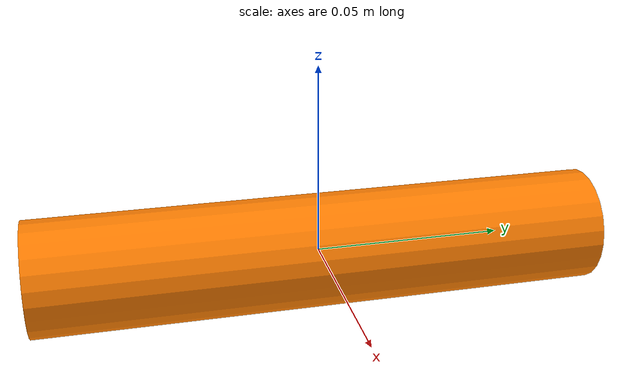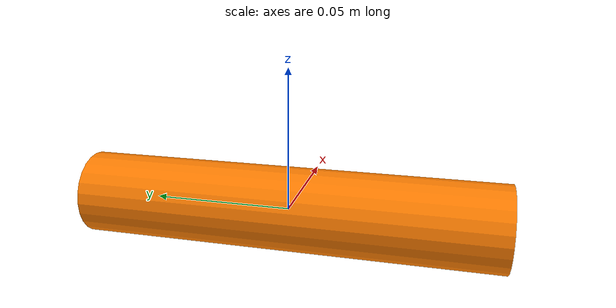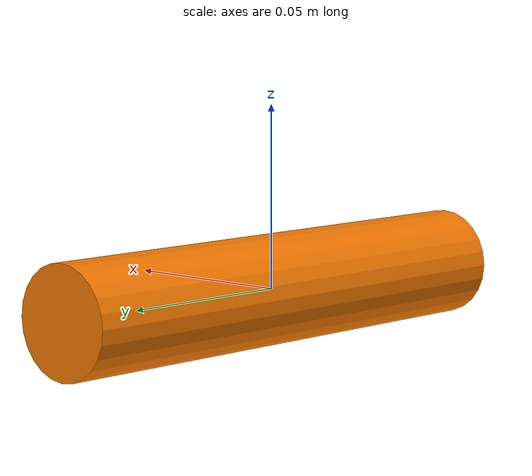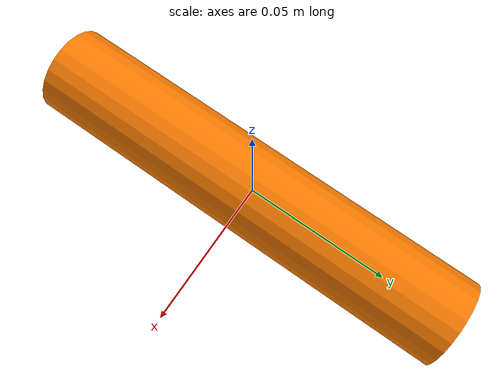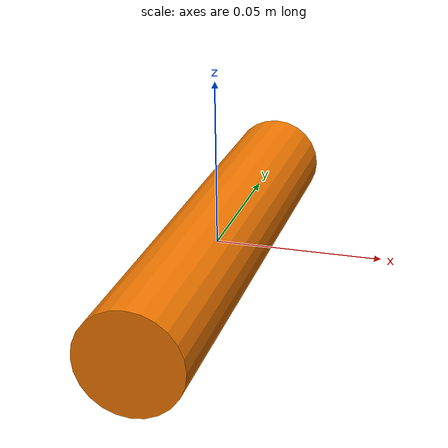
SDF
<?xml version='1.0'?>
<sdf version='1.6'>
  <model name='marker'>
    <link name='link_0'>
      <inertial>
        <mass>1</mass>
        <inertia>
          <ixx>0.145833</ixx>
          <ixy>0</ixy>
          <ixz>0</ixz>
          <iyy>0.145833</iyy>
          <iyz>0</iyz>
          <izz>0.125</izz>
        </inertia>
        <pose frame=''>0 0 0 0 -0 0</pose>
      </inertial>
      <pose frame=''>0 -0 0 0 -0 0</pose>
      <gravity>0</gravity>
      <self_collide>0</self_collide>
      <kinematic>0</kinematic>
      <enable_wind>0</enable_wind>
      <visual name='visual'>
        <pose frame=''>0 0 0 1.57 0 0</pose>
        <geometry>
          <cylinder>
            <radius>0.015</radius>
            <length>0.15</length>
          </cylinder>
        </geometry>
        <material>
          <lighting>1</lighting>
          <script>
            <uri>file://media/materials/scripts/gazebo.material</uri>
            <name>Gazebo/Grey</name>
          </script>
          <shader type='vertex'>
            <normal_map>__default__</normal_map>
          </shader>
          <ambient>0.961 0.475 0 1</ambient>
          <diffuse>0.7 0.7 0.7 1</diffuse>
          <specular>0.01 0.01 0.01 1</specular>
          <emissive>0 0 0 1</emissive>
        </material>
        <transparency>0</transparency>
        <cast_shadows>1</cast_shadows>
      </visual>
    </link>
    <static>0</static>
    <allow_auto_disable>1</allow_auto_disable>
  </model>
</sdf>
